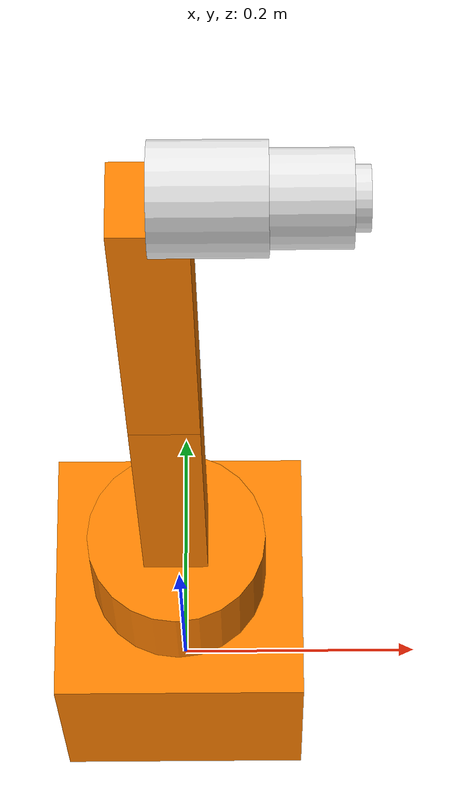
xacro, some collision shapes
<?xml version="1.0"?>
<robot xmlns:xacro="http://www.ros.org/wiki/xacro" name="robot_arm">

  <!-- Robot Parameters (ABB IRB 120) -->
  <xacro:property name="PI" value="3.14159265359"/>
  <xacro:property name="DEG2RAD" value="0.01745329251"/>

  <!-- Link Masses (Approximate distribution for 25kg total mass) -->
  <xacro:property name="mass_base" value="6.0"/>
  <xacro:property name="mass_link1" value="5.0"/>
  <xacro:property name="mass_link2" value="6.0"/>
  <xacro:property name="mass_link3" value="3.0"/>
  <xacro:property name="mass_link4" value="2.0"/>
  <xacro:property name="mass_link5" value="1.0"/>
  <xacro:property name="mass_link6" value="0.5"/>

  <!-- Reference Material -->
  <material name="abb_white">
    <color rgba="0.9 0.9 0.9 1"/>
  </material>
  <material name="abb_orange">
    <color rgba="1.0 0.5 0.0 1"/>
  </material>

  <!-- Dummy root link to satisfy KDL parser & Gazebo -->
  <link name="world"/>

  <joint name="fixed_base_joint" type="fixed">
    <parent link="world"/>
    <child link="base_link"/>
    <origin xyz="0 0 0" rpy="0 0 0"/>
  </joint>

  <!-- ======================== LINKS & JOINTS ======================== -->

  <!-- ============== BASE LINK ============== -->
  <link name="base_link">
    <visual>
      <geometry>
        <mesh filename="package://robot_description/meshes/base_link.stl" scale="0.001 0.001 0.001"/>
        <!-- Fallback geometry if mesh missing -->
        <box size="0.2 0.2 0.2"/>
      </geometry>
      <origin xyz="0 0 0.1" rpy="0 0 0"/>
      <material name="abb_orange"/>
    </visual>
    <collision>
      <geometry>
        <box size="0.2 0.2 0.2"/>
      </geometry>
      <origin xyz="0 0 0.1" rpy="0 0 0"/>
    </collision>
    <inertial>
      <mass value="${mass_base}"/>
      <inertia ixx="0.02" ixy="0" ixz="0" iyy="0.02" iyz="0" izz="0.02"/>
    </inertial>
  </link>

  <!-- ============== JOINT 1 (Base Rotation) ============== -->
  <!-- Height: 290mm from base to J2. Split: Base->J1 (Vertical) -->
  <joint name="joint_1" type="revolute">
    <parent link="base_link"/>
    <child link="link_1"/>
    <origin xyz="0 0 0.0" rpy="0 0 0"/>
    <axis xyz="0 0 1"/>
    <limit lower="${-165*DEG2RAD}" upper="${165*DEG2RAD}" effort="100" velocity="${250*DEG2RAD}"/>
    <dynamics damping="0.5" friction="0.1"/>
  </joint>

  <link name="link_1">
    <visual>
      <geometry>
        <cylinder radius="0.07" length="0.29"/>
      </geometry>
      <origin xyz="0 0 0.145" rpy="0 0 0"/>
      <material name="abb_orange"/>
    </visual>
    <collision>
      <geometry>
        <cylinder radius="0.07" length="0.29"/>
      </geometry>
      <origin xyz="0 0 0.145" rpy="0 0 0"/>
    </collision>
    <inertial>
      <mass value="${mass_link1}"/>
      <inertia ixx="0.01" ixy="0" ixz="0" iyy="0.01" iyz="0" izz="0.005"/>
    </inertial>
  </link>

  <!-- ============== JOINT 2 (Shoulder Bending) ============== -->
  <!-- Z: 290mm up. Axis Y -->
  <joint name="joint_2" type="revolute">
    <parent link="link_1"/>
    <child link="link_2"/>
    <origin xyz="0 0 0.290" rpy="0 0 0"/>
    <axis xyz="0 1 0"/>
    <limit lower="${-110*DEG2RAD}" upper="${110*DEG2RAD}" effort="100" velocity="${250*DEG2RAD}"/>
    <dynamics damping="0.5" friction="0.1"/>
  </joint>

  <link name="link_2">
    <visual>
      <geometry>
        <box size="0.05 0.05 0.270"/>
      </geometry>
      <origin xyz="0 0 0.135" rpy="0 0 0"/>
      <material name="abb_orange"/>
    </visual>
    <collision>
      <geometry>
        <box size="0.05 0.05 0.270"/>
      </geometry>
      <origin xyz="0 0 0.135" rpy="0 0 0"/>
    </collision>
    <inertial>
      <mass value="${mass_link2}"/>
      <inertia ixx="0.01" ixy="0" ixz="0" iyy="0.01" iyz="0" izz="0.005"/>
    </inertial>
  </link>

  <!-- ============== JOINT 3 (Elbow Bending) ============== -->
  <!-- Z: 270mm (Link 2 length) -->
  <joint name="joint_3" type="revolute">
    <parent link="link_2"/>
    <child link="link_3"/>
    <origin xyz="0 0 0.270" rpy="0 0 0"/>
    <axis xyz="0 1 0"/>
    <limit lower="${-110*DEG2RAD}" upper="${70*DEG2RAD}" effort="100" velocity="${250*DEG2RAD}"/>
    <dynamics damping="0.5" friction="0.1"/>
  </joint>

  <link name="link_3">
    <visual>
      <geometry>
        <box size="0.05 0.05 0.302"/>
      </geometry>
      <origin xyz="0 0 0.151" rpy="0 0 0"/>
      <material name="abb_orange"/>
    </visual>
    <collision>
      <geometry>
        <box size="0.05 0.05 0.302"/>
      </geometry>
      <origin xyz="0 0 0.151" rpy="0 0 0"/>
    </collision>
    <inertial>
      <mass value="${mass_link3}"/>
      <inertia ixx="0.005" ixy="0" ixz="0" iyy="0.005" iyz="0" izz="0.002"/>
    </inertial>
  </link>

  <!-- ============== JOINT 4 (Wrist Rotate) ============== -->
  <!-- 302mm along arm -->
  <joint name="joint_4" type="revolute">
    <parent link="link_3"/>
    <child link="link_4"/>
    <origin xyz="0 0 0.302" rpy="0 0 0"/>
    <axis xyz="1 0 0"/> <!-- Rotates along arm axis -->
    <limit lower="${-160*DEG2RAD}" upper="${160*DEG2RAD}" effort="50" velocity="${320*DEG2RAD}"/>
    <dynamics damping="0.1" friction="0.1"/>
  </joint>

  <link name="link_4">
    <visual>
      <geometry>
        <cylinder radius="0.035" length="0.072"/>
      </geometry>
      <origin xyz="0.036 0 0" rpy="0 1.5708 0"/>
      <material name="abb_white"/>
    </visual>
    <collision>
      <geometry>
        <cylinder radius="0.035" length="0.072"/>
      </geometry>
      <origin xyz="0.036 0 0" rpy="0 1.5708 0"/>
    </collision>
    <inertial>
      <mass value="${mass_link4}"/>
      <inertia ixx="0.002" ixy="0" ixz="0" iyy="0.002" iyz="0" izz="0.002"/>
    </inertial>
  </link>

  <!-- ============== JOINT 5 (Wrist Bend) ============== -->
  <!-- 72mm extension? J4-J5-J6 are close -->
  <joint name="joint_5" type="revolute">
    <parent link="link_4"/>
    <child link="link_5"/>
    <origin xyz="0.072 0 0" rpy="0 0 0"/>
    <axis xyz="0 1 0"/>
    <limit lower="${-120*DEG2RAD}" upper="${120*DEG2RAD}" effort="50" velocity="${320*DEG2RAD}"/>
    <dynamics damping="0.1" friction="0.1"/>
  </joint>

  <link name="link_5">
    <visual>
      <geometry>
        <cylinder radius="0.03" length="0.05"/>
      </geometry>
      <origin xyz="0.025 0 0" rpy="0 1.5708 0"/>
      <material name="abb_white"/>
    </visual>
    <collision>
      <geometry>
        <cylinder radius="0.03" length="0.05"/>
      </geometry>
      <origin xyz="0.025 0 0" rpy="0 1.5708 0"/>
    </collision>
    <inertial>
      <mass value="${mass_link5}"/>
      <inertia ixx="0.001" ixy="0" ixz="0" iyy="0.001" iyz="0" izz="0.001"/>
    </inertial>
  </link>

  <!-- ============== JOINT 6 (Flange Rotate) ============== -->
  <joint name="joint_6" type="revolute">
    <parent link="link_5"/>
    <child link="link_6"/>
    <origin xyz="0.05 0 0" rpy="0 0 0"/>
    <axis xyz="1 0 0"/>
    <limit lower="${-400*DEG2RAD}" upper="${400*DEG2RAD}" effort="20" velocity="${460*DEG2RAD}"/>
    <dynamics damping="0.1" friction="0.1"/>
  </joint>

  <link name="link_6">
    <visual>
      <geometry>
        <cylinder radius="0.02" length="0.01"/>
      </geometry>
      <origin xyz="0.005 0 0" rpy="0 1.5708 0"/>
      <material name="abb_white"/>
    </visual>
    <collision>
      <geometry>
        <cylinder radius="0.02" length="0.01"/>
      </geometry>
      <origin xyz="0.005 0 0" rpy="0 1.5708 0"/>
    </collision>
    <inertial>
      <mass value="${mass_link6}"/>
      <inertia ixx="0.001" ixy="0" ixz="0" iyy="0.001" iyz="0" izz="0.001"/>
    </inertial>
  </link>

  <!-- ============== TOOL FRAME ============== -->
  <joint name="tool_joint" type="fixed">
    <parent link="link_6"/>
    <child link="tool0"/>
    <origin xyz="0.01 0 0" rpy="0 0 0"/>
  </joint>

  <link name="tool0"/>

  <!-- ============== GAZEBO HARMONIC PLUGINS ============== -->
  <!-- CRITICAL: Remapping maintained -->
  <gazebo>
    <plugin filename="libgz-sim-joint-trajectory-controller-system.so" name="gz::sim::systems::JointTrajectoryController">
      <topic>/gazebo/joint_trajectory</topic>
    </plugin>
    <plugin filename="libgz-sim-joint-state-publisher-system.so" name="gz::sim::systems::JointStatePublisher">
      <topic>/gazebo/joint_states</topic>
      <joint_name>joint_1</joint_name>
      <joint_name>joint_2</joint_name>
      <joint_name>joint_3</joint_name>
      <joint_name>joint_4</joint_name>
      <joint_name>joint_5</joint_name>
      <joint_name>joint_6</joint_name>
    </plugin>
  </gazebo>

  <gazebo reference="base_link">
    <material>Gazebo/Orange</material>
  </gazebo>
  <gazebo reference="link_1">
    <material>Gazebo/Orange</material>
  </gazebo>
  <gazebo reference="link_2">
    <material>Gazebo/Orange</material>
  </gazebo>
  <gazebo reference="link_3">
    <material>Gazebo/Orange</material>
  </gazebo>
  <gazebo reference="link_4">
    <material>Gazebo/White</material>
  </gazebo>
  <gazebo reference="link_5">
    <material>Gazebo/White</material>
  </gazebo>
  <gazebo reference="link_6">
    <material>Gazebo/Grey</material>
  </gazebo>

</robot>
